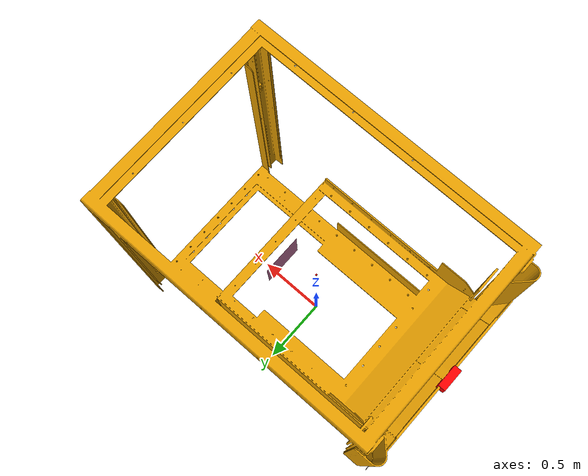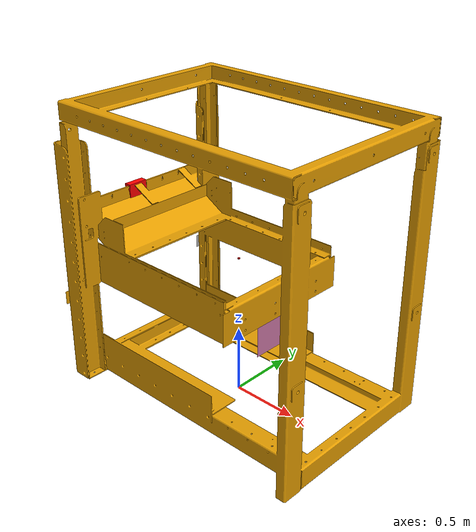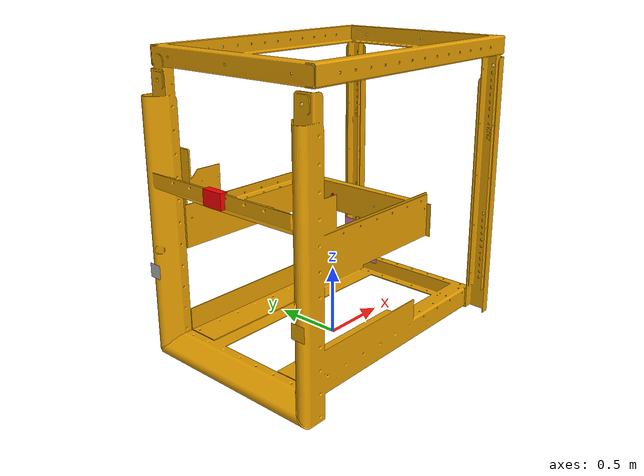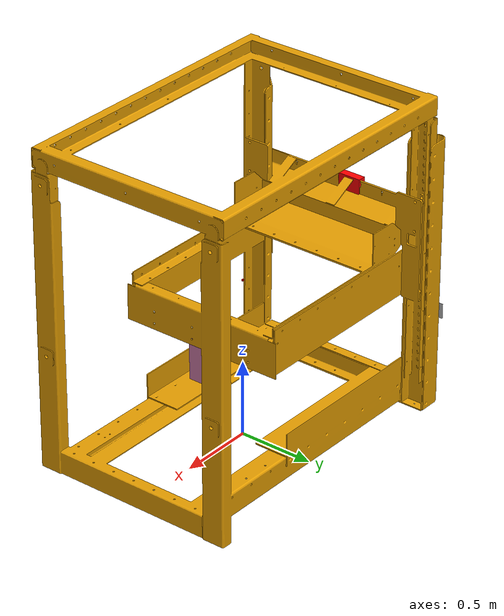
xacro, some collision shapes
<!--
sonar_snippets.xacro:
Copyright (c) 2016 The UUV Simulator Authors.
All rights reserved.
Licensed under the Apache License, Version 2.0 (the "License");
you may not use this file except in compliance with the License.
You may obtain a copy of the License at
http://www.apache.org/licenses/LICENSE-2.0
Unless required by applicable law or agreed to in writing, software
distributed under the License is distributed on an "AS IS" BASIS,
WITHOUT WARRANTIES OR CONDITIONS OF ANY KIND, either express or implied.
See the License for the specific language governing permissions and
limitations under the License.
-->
<?xml version="1.0"?>
<robot name="tms" xmlns:xacro="http://www.ros.org/wiki/xacro">

  <!-- Necessary for sonar to work -->
  <xacro:arg name="namespace" default="tms"/>
  <xacro:arg name="visualize" default="false"/>
  <xacro:include filename="$(find deep_ocean)/urdf_xacro_files/sensors_and_actuators/sonar_snippets.xacro" />
  <xacro:include filename="$(find deep_ocean)/urdf_xacro_files/sensors_and_actuators/sensor_snippets.xacro" />
  <!-- Necessary for thruster_macro to work -->
  <xacro:include filename="$(find deep_ocean)/urdf_xacro_files/sensors_and_actuators/actuators.xacro" />
  <xacro:include filename="$(find uuv_descriptions)/urdf/common.urdf.xacro" />
  <xacro:include filename="$(find deep_ocean)/urdf_xacro_files/sensors_and_actuators/thruster_snippets.xacro" />
  <!-- Necessary for state publishing -->
  <xacro:include filename="$(find uuv_gazebo_ros_plugins)/urdf/misc.xacro" />
  <!-- Necessary for ArUco markers and calibration bord -->
  <xacro:include filename="$(find deep_ocean)/urdf_xacro_files/sensors_and_actuators/aruco_macro.xacro" />

  <!-- Fluid Density of Water (kg/m³) -->
  <xacro:property name="fluid_density" value="1028"/>

  <!-- Scaling Factor for the TMS. Greater size means it's easier to dock -->
  <xacro:property name="scale_factor" value="1.3"/> <!-- Change this to scale up/down -->

  <!-- Original Dimensions of the TMS -->
  <xacro:property name="size_x_orig" value="1.64"/>
  <xacro:property name="size_y_orig" value="1.07"/>
  <xacro:property name="size_z_orig" value="1.62"/>

  <!-- Scaled Dimensions -->
  <xacro:property name="size_x" value="${size_x_orig * scale_factor}"/>
  <xacro:property name="size_y" value="${size_y_orig * scale_factor}"/>
  <xacro:property name="size_z" value="${size_z_orig * scale_factor}"/>

  <!-- Mass (Scaled) -->
  <xacro:property name="mass" value="${550}"/>

  <!-- Volume (to ensure neutral buoyancy) -->
  <xacro:property name="volume" value="${mass / fluid_density}"/>

  <!-- Center of Buoyancy (adjusted based on height) -->
  <xacro:property name="cob_z" value="${0.6 * size_z}"/>

  <!-- Inertia Calculation -->
  <xacro:property name="ixx" value="${(1/12) * mass * (size_y * size_y + size_z * size_z)}"/>
  <xacro:property name="iyy" value="${(1/12) * mass * (size_x * size_x + size_z * size_z)}"/>
  <xacro:property name="izz" value="${(1/12) * mass * (size_x * size_x + size_y * size_y)}"/>

  <link name="$(arg namespace)/base_link">
    <inertial>
      <mass value="${mass}"/>
      <origin xyz="0 0 0" rpy="0 0 3.14159"/>
      <inertia ixx="${ixx}" ixy="0.0" ixz="0.0" iyy="${iyy}" iyz="0.0" izz="${izz}"/>
    </inertial>

    <!-- Visual Representation -->
    <visual>
      <origin xyz="0 0 0" rpy="0 0 3.14159"/>
      <geometry>
        <mesh filename="package://deep_ocean/meshes/tms_visual.dae" scale="${scale_factor} ${scale_factor} ${scale_factor}"/>
      </geometry>
    </visual>

    <!-- Collision Geometry -->
    <collision>
      <origin xyz="0 0 0" rpy="0 0 3.14159"/>
      <geometry>
        <mesh filename="package://deep_ocean/meshes/tms_collision.stl" scale="${scale_factor} ${scale_factor} ${scale_factor}"/>
      </geometry>
    </collision>
  </link>

  <gazebo>
    <plugin name="uuv_plugin" filename="libuuv_underwater_object_ros_plugin.so">
      <fluid_density>${fluid_density}</fluid_density>
      <flow_velocity_topic>hydrodynamics/current_velocity</flow_velocity_topic>
      <debug>0</debug>
      <link name="$(arg namespace)/base_link">
        <neutrally_buoyant>1</neutrally_buoyant>  <!-- Ensures mass and volume decide float/sink -->
        <volume>${volume}</volume>
        <box>
          <width>${size_x}</width>
          <length>${size_y}</length>
          <height>${size_z}</height>
        </box>
        <center_of_buoyancy>0 0 ${cob_z}</center_of_buoyancy>

        <!-- Hydrodynamic Model using Fossen type -->
        <hydrodynamic_model>
          <type>fossen</type>

          <!-- Rough Added Mass Estimation -->
          <added_mass>
              ${0.1 * mass}  0  0  0  0  0
              0  ${0.1 * mass}  0  0  0  0
              0  0  ${0.1 * mass}  0  0  0
              0  0  0  ${0.05 * mass}  0  0
              0  0  0  0  ${0.05 * mass}  0
              0  0  0  0  0  ${0.05 * mass}
          </added_mass>

          <!-- Rough Linear Damping Estimation -->
          <linear_damping>
              ${-150 * size_x} ${-150 * size_y} ${-150 * size_z}
              ${-50 * size_z} ${-50 * size_y} ${-50 * size_x}
          </linear_damping>

          <quadratic_damping>
              ${-200 * size_x} ${-200 * size_y} ${-200 * size_z}
              ${-75 * size_z} ${-75 * size_y} ${-75 * size_x}
          </quadratic_damping>

        </hydrodynamic_model>

      </link>
    </plugin>
  </gazebo>

  <xacro:default_joint_state_publisher namespace="$(arg namespace)" update_rate="50"/>

  <!-- Initilizing thruster macro, found in actuators.xacro -->
  <xacro:thruster_macro namespace="$(arg namespace)" thruster_id="0" mesh_scale="${scale_factor}">
    <origin xyz="${0.6650895*scale_factor} ${0.367385*scale_factor} ${0.828822*scale_factor}" rpy="0 0 ${3*pi/4}"/>
  </xacro:thruster_macro>
  <xacro:thruster_macro namespace="$(arg namespace)" thruster_id="1" mesh_scale="${scale_factor}">
    <origin xyz="${0.665895*scale_factor} ${-0.367385*scale_factor} ${0.828822*scale_factor}" rpy="0 0 ${-3*pi/4}"/>
  </xacro:thruster_macro>

  <!-- Macro from sonar_snippets file -->
  <xacro:sonar_3d parent_link="$(arg namespace)/base_link" namespace="$(arg namespace)" scale_factor="${scale_factor}">
      <origin xyz="${-0.8*scale_factor} 0 ${0.98*scale_factor}" rpy="0 0 ${pi}"/>
  </xacro:sonar_3d>

  <!-- imu sensor -->
  <xacro:imu_sensor parent_link="$(arg namespace)/base_link" namespace="$(arg namespace)">
      <origin xyz="0 0 ${0.81*scale_factor}" rpy="0 0 0"/>
  </xacro:imu_sensor>

    <!-- Spawning in ArUco 5x5 marker -->
  <xacro:aruco_marker_5x5 namespace="$(arg namespace)" parent_link="$(arg namespace)/base_link" id="0" scale="0.30">
    <origin xyz="${0.24*scale_factor} 0 ${0.48*scale_factor}" rpy="${pi/2} 0 ${-pi/2}"/>
  </xacro:aruco_marker_5x5>

    <!-- Spawning in ArUco 4x4 marker -->
  <xacro:aruco_marker_4x4 namespace="$(arg namespace)" parent_link="$(arg namespace)/base_link" id="0" scale="1">
    <origin xyz="${-0.8*scale_factor} ${0.5*scale_factor} ${0.485*scale_factor}" rpy="${pi/2} 0 ${-pi/2}"/>
  </xacro:aruco_marker_4x4>

  <xacro:aruco_marker_4x4 namespace="$(arg namespace)" parent_link="$(arg namespace)/base_link" id="3" scale="1">
    <origin xyz="${-0.8*scale_factor} ${-0.5*scale_factor} ${0.485*scale_factor}" rpy="${pi/2} 0 ${-pi/2}"/>
  </xacro:aruco_marker_4x4>

</robot>

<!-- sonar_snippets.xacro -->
<robot xmlns:xacro="http://www.ros.org/wiki/xacro">

  <!-- Macro for a minimal collision block (for when you do not want collision block but gazebo needs one) -->
  <xacro:macro name="no_collision">
    <collision>
      <geometry>
        <cylinder length="${0.000001}" radius="${0.000001}" />
      </geometry>
      <origin xyz="0 0 0" rpy="0 ${0.5*pi} 0"/>
    </collision>
  </xacro:macro>

  <!-- Inspired by m450-130: http://www.blueview.com/products/2d-imaging-sonar/m900-series/ -->
  <xacro:macro name="forward_multibeam_sonar_m450_130" params="namespace parent_link visualize:=false *origin">
    <xacro:multibeam_sonar
      namespace="${namespace}"
      suffix=""
      parent_link="${parent_link}"
      topic="sonar"
      mass="0.0001"
      update_rate="25"
      samples="768"
      fov="2.27"
      range_min="1.0"
      range_max="100.0"
      range_stddev="0.027"
      mesh=""
      visualize="${visualize}">
      <inertia ixx="0.00001" ixy="0.0" ixz="0.0" iyy="0.00001" iyz="0.0" izz="0.00001" />
      <xacro:insert_block name="origin" />
      <visual>
        <geometry>
          <mesh filename="file://$(find uuv_sensor_ros_plugins)/meshes/m450-130.dae" scale="0.5 0.5 0.5"/>
        </geometry>
      </visual>
    </xacro:multibeam_sonar>
  </xacro:macro>

  <xacro:macro name="multibeam_sonar"
    params="namespace suffix parent_link topic mass update_rate
      samples fov range_min range_max range_stddev mesh visualize
      *inertia *origin *visual">
    <!-- Sensor link -->
    <link name="${namespace}/sonar${suffix}_link">
      <inertial>
        <xacro:insert_block name="inertia" />
        <mass value="${mass}" />
        <origin xyz="1 0 0" rpy="0 0 0" />
      </inertial>

      <xacro:insert_block name="visual" />
      <xacro:no_collision/>
    </link>

  <joint name="${namespace}_sonar${suffix}_joint" type="revolute">
    <xacro:insert_block name="origin" />
    <parent link="${parent_link}" />
    <child link="${namespace}/sonar${suffix}_link" />
    <limit upper="0" lower="0" effort="0" velocity="0" />
    <axis xyz="1 0 0"/>
  </joint>

  <gazebo reference="${namespace}/sonar${suffix}_link">
    <sensor type="gpu_ray" name="sonar${suffix}">
      <pose>0 0 0 0 0 0</pose>
      <visualize>${visualize}</visualize>
      <update_rate>${update_rate}</update_rate>
      <ray>
        <scan>
          <horizontal>
            <samples>${samples}</samples>
            <resolution>1</resolution>
            <min_angle>-${0.5*fov}</min_angle>
            <max_angle>${0.5*fov}</max_angle>
          </horizontal>
        </scan>
        <range>
          <min>${range_min}</min>
          <max>${range_max}</max>
          <resolution>0.01</resolution>
        </range>
        <noise>
          <type>gaussian</type>
          <mean>0.0</mean>
          <stddev>${range_stddev}</stddev>
        </noise>
      </ray>
      <plugin name="sonar${suffix}_controller" filename="libgazebo_ros_gpu_laser.so">
        <topicName>${topic}</topicName>
        <frameName>sonar${suffix}_link</frameName>
      </plugin>
      <!-- TODO: Separate switchable sonar version in another macro -->
    </sensor>
  </gazebo>
  </xacro:macro>

  <!-- Macro a 3d depth sonar -->
<xacro:macro name="sonar_3d" params="parent_link namespace scale_factor:=1.0 *origin">

    <link name="${namespace}/sonar_3d_link">
      <visual>
        <geometry>
          <box size="${scale_factor*0.04} ${scale_factor*0.12} ${scale_factor*0.08}"/>
        </geometry>
        <material name="red">
          <color rgba="1 0 0 1"/>
        </material>
      </visual>
      <inertial>
        <mass value="0.0"/>
        <origin xyz="0 0 0"/>
        <inertia ixx="${scale_factor*0.1}" ixy="0.0" ixz="0.0" iyy="${scale_factor*0.1}" iyz="0.0" izz="${scale_factor*0.1}"/>
      </inertial>
      <collision>
        <geometry>
          <box size="${scale_factor*0.04} ${scale_factor*0.12} ${scale_factor*0.08}"/>
        </geometry>
      </collision>
    </link>

    <joint name="${namespace}/sonar_3d_joint" type="fixed">
      <parent link="${parent_link}"/>
      <child link="${namespace}/sonar_3d_link"/>
      <xacro:insert_block name="origin" />
    </joint>

    <link name="${namespace}/sonar_3d_optical_link"/>
    <joint name="${namespace}/sonar_3d_optical_joint" type="fixed">
      <parent link="${namespace}/sonar_3d_link"/>
      <child link="${namespace}/sonar_3d_optical_link"/>
      <origin xyz="0 0 0" rpy="-1.57 0 -1.57"/>
    </joint>

    <gazebo reference="${namespace}/sonar_3d_link">
      <material>Gazebo/Red</material>
      <sensor name="sonar_3d_sensor" type="depth">
        <visualize>true</visualize>
        <updateRate>5</updateRate>
        <camera>
          <horizontal_fov>1.57</horizontal_fov>
          <vertical_fov>0.698</vertical_fov>
          <image>
            <width>160</width>
            <height>100</height>
          </image>
          <clip>
            <near>0.02</near>
            <far>15.0</far>     <!-- Change the length of field of view-->
          </clip>
        </camera>
        <plugin name="sonar_3d_plugin" filename="libgazebo_ros_openni_kinect.so">
          <cameraName>${namespace}/sonar_3d</cameraName>
          <frameName>${namespace}/sonar_3d_optical_link</frameName>
          <alwaysOn>true</alwaysOn>
          <pointCloudTopicName>points</pointCloudTopicName>
          <imageTopicName>rgb/image_raw</imageTopicName>
          <depthImageTopicName>depth/image_raw</depthImageTopicName>
          <cameraInfoTopicName>rgb/camera_info</cameraInfoTopicName>
          <depthImageCameraInfoTopicName>depth/camera_info</depthImageCameraInfoTopicName>
        </plugin>
      </sensor>
    </gazebo>
</xacro:macro>

</robot>

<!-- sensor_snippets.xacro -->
<robot xmlns:xacro="http://www.ros.org/wiki/xacro">

    <!-- IMU sensor macro -->
    <xacro:macro name="imu_sensor" params="parent_link namespace *origin">
    <link name="${namespace}/imu_link">
        <visual>
            <geometry>
                <box size="0.01 0.01 0.01" />
            </geometry>
            <material name="red">
                <color rgba="1 0 0 1" />
            </material>
        </visual>
        <inertial>
            <mass value="0.0" />
            <origin xyz="0 0 0" />
            <inertia ixx="0.1" ixy="0.0" ixz="0.0" iyy="0.1" iyz="0.0" izz="0.1" />
        </inertial>
        <collision>
            <geometry>
                <box size="0.01 0.01 0.01" />
            </geometry>
        </collision>
    </link>

    <joint name="${namespace}/imu_joint" type="fixed">
        <parent link="${parent_link}" />
        <child link="${namespace}/imu_link" />
        <xacro:insert_block name="origin" />
    </joint>

    <gazebo reference="${namespace}/imu_link">
        <gravity>true</gravity>
        <sensor name="imu_sensor" type="imu">
        <always_on>true</always_on>
        <update_rate>10</update_rate>
        <visualize>true</visualize>
        <topic>__default_topic__</topic>
        <plugin filename="libgazebo_ros_imu_sensor.so" name="imu_plugin">
            <topicName>imu</topicName>
            <bodyName>${namespace}/imu_link</bodyName>
            <updateRateHZ>10.0</updateRateHZ>
            <gaussianNoise>0.0</gaussianNoise>
            <xyzOffset>0 0 0</xyzOffset>
            <rpyOffset>0 0 0</rpyOffset>
            <frameName>${namespace}/imu_link</frameName>
            <initialOrientationAsReference>false</initialOrientationAsReference>
        </plugin>
        <pose>0 0 0 0 0 0</pose>
        </sensor>
    </gazebo>
    </xacro:macro>

    <!-- camera sensor macro -->
    <xacro:macro name="camera_sensor" params="parent_link namespace *origin">
    <link name="${namespace}/camera_link">
        <visual>
            <geometry>
                <mesh filename="file://$(find deep_ocean)/meshes/exploreHD_camera.stl" />
            </geometry>
        </visual>
        <inertial>
            <mass value="0.2" />
            <origin xyz="0 0 0" />
        <inertia ixx="0.1" ixy="0.0" ixz="0.0" iyy="0.1" iyz="0.0" izz="0.1" />
        </inertial>
        <collision>
            <geometry>
                <box size="0.1 0.1 0.1" />
            </geometry>
        </collision>
    </link>

    <joint name="${namespace}/camera_joint" type="fixed">
        <parent link="${parent_link}" />
        <child link="${namespace}/camera_link" />
        <xacro:insert_block name="origin" />
    </joint>

    <link name="${namespace}/camera_link_optical"/>

    <joint name="${namespace}/camera_optical_joint" type="fixed">
        <parent link="${namespace}/camera_link" />
        <child link="${namespace}/camera_link_optical" />
        <origin xyz="0 0 0" rpy="-1.57 0 -1.57"/>
    </joint>

    <gazebo reference="${namespace}/camera_link">
        <material>Gazebo/Red</material>
        <sensor type="camera" name="camera_sensor">
        <pose>0 0 0 0 0 0</pose>
        <update_rate>30</update_rate>
        <camera>
            <horizontal_fov>1.047</horizontal_fov>
            <image>
            <width>1920</width>
            <height>1080</height>
            <format>R8G8B8</format>
            </image>
            <clip>
            <near>0.1</near>
            <far>10</far>
            </clip>
        </camera>
        <plugin name="camera_controller" filename="libgazebo_ros_camera.so">
            <frameName>${namespace}/camera_link_optical</frameName>
            <alwaysOn>true</alwaysOn>
            <updateRate>0.0</updateRate>
            <cameraName>camera</cameraName>
            <imageTopicName>image_raw</imageTopicName>
            <cameraInfoTopicName>camera_info</cameraInfoTopicName>
        </plugin>
        </sensor>
    </gazebo>
    </xacro:macro>

</robot>

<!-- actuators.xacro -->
<robot xmlns:xacro="http://www.ros.org/wiki/xacro">

  <xacro:property name="prop_mesh_file" value="file://$(find uuv_descriptions)/meshes/prop.dae" />
  <!--xacro:property name="prop_mesh_file" value="file://$(find rexrov2_description)/meshes/Propeller.dae" /-->

  <!-- Thruster joint and link snippet -->
  <xacro:macro name="thruster_macro"
    params="namespace thruster_id mesh_scale:=0.5 *origin">
    <xacro:thruster_module_first_order_basic_fcn_macro
      namespace="${namespace}"
      thruster_id="${thruster_id}"
      mesh_filename="${prop_mesh_file}"
      mesh_scale="${mesh_scale}"
      dyn_time_constant="0.05"
      rotor_constant="0.026546960744430276">
      <xacro:insert_block name="origin"/>
    </xacro:thruster_module_first_order_basic_fcn_macro>
  </xacro:macro>

</robot>

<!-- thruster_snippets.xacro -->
<robot xmlns:xacro="http://www.ros.org/wiki/xacro">

  <!-- ROTOR DYNAMICS MACROS -->

  <!-- First order dynamics -->

  <xacro:macro name="rotor_dyn_first_order_macro" params="time_constant">
    <dynamics>
      <type>FirstOrder</type>
      <timeConstant>${time_constant}</timeConstant>
    </dynamics>
  </xacro:macro>

  <!--
    MACROS FOR CONVERSION FUNCTIONS BETWEEN ROTOR'S ANG. VELOCITY AND
    THRUSTER FORCE
  -->

  <!--
    1) Basic curve
      Input: x
      Output: thrust
      Function: thrust = rotorConstant * x * abs(x)
  -->
  <xacro:macro name="thruster_cf_basic_macro"
    params="rotor_constant">
    <conversion>
      <type>Basic</type>
      <rotorConstant>${rotor_constant}</rotorConstant>
    </conversion>
  </xacro:macro>

  <xacro:macro name="thruster_cf_dead_zone_macro"
    params="rotor_constant_l
            rotor_constant_r
            delta_l
            delta_r">
    <conversion>
      <type>Bessa</type>
      <rotorConstantL>${rotor_constant_l}</rotorConstantL>
      <rotorConstantR>${rotor_constant_r}</rotorConstantR>
      <deltaL>${delta_l}</deltaL>
      <deltaR>${delta_r}</deltaR>
    </conversion>
  </xacro:macro>

  <xacro:macro name="thruster_cf_linear_interp_macro"
    params="input_values
            output_values">
    <conversion>
      <type>LinearInterp</type>
      <inputValues>${input_values}</inputValues>
      <outputValues>${output_values}</outputValues>
    </conversion>
  </xacro:macro>

  <!-- THRUSTER MODULE MACROS  -->

  <xacro:macro name="generic_thruster_macro"
    params="namespace
            thruster_id
            *origin
            mesh_filename
            mesh_scale
            *dynamics
            *conversion">
    <joint name="${namespace}/thruster_${thruster_id}_joint" type="continuous">
      <xacro:insert_block name="origin"/>
      <axis xyz="1 0 0"/>
      <parent link="${namespace}/base_link"/>
      <child link="${namespace}/thruster_${thruster_id}"/>
    </joint>

    <link name="${namespace}/thruster_${thruster_id}">
      <xacro:box_inertial x="0" y="0" z="0" mass="0.000000001">
        <origin xyz="0 0 0" rpy="0 0 0"/>
      </xacro:box_inertial>
      <visual>
        <origin rpy="0 0 0" xyz="0 0 0"/>
        <geometry>
          <mesh filename="${mesh_filename}" scale="${mesh_scale} ${mesh_scale} ${mesh_scale}"/>
        </geometry>
      </visual>
      <collision>
        <!-- todo: gazebo needs a collision volume or it will ignore the pose of
           the joint that leads to this link (and assume it to be the identity) -->
        <geometry>
          <cylinder length="0.000001" radius="0.000001"/>
        </geometry>
        <origin xyz="0 0 0" rpy="0 0 0"/>
      </collision>
    </link>

    <gazebo>
      <plugin name="${namespace}_${thruster_id}_thruster_model" filename="libuuv_thruster_ros_plugin.so">
        <linkName>${namespace}/thruster_${thruster_id}</linkName>
        <jointName>${namespace}/thruster_${thruster_id}_joint</jointName>
        <thrusterID>${thruster_id}</thrusterID>
        <xacro:insert_block name="dynamics"/>
        <xacro:insert_block name="conversion"/>
      </plugin>
    </gazebo>

    <gazebo reference="${namespace}/thruster_${thruster_id}">
      <selfCollide>false</selfCollide>
    </gazebo>
  </xacro:macro>

  <!--
    Thruster model with first order dynamic model for the rotor dynamics
    and a proportional non-linear steady-state conversion from the rotor's
    angular velocity to output thrust force
  -->

  <xacro:macro name="thruster_module_first_order_basic_fcn_macro"
      params="namespace
              thruster_id
              *origin
              mesh_filename
              mesh_scale
              dyn_time_constant
              rotor_constant">
    <xacro:generic_thruster_macro
      namespace="${namespace}"
      thruster_id="${thruster_id}"
      mesh_filename="${mesh_filename}"
      mesh_scale="${mesh_scale}">
      <xacro:insert_block name="origin"/>
      <xacro:rotor_dyn_first_order_macro time_constant="${dyn_time_constant}"/>
      <xacro:thruster_cf_basic_macro rotor_constant="${rotor_constant}"/>
    </xacro:generic_thruster_macro>
  </xacro:macro>

</robot>

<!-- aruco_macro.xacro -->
<robot xmlns:xacro="http://www.ros.org/wiki/xacro">

  <!-- ArUco Marker 5x5 Macro -->
  <xacro:macro name="aruco_marker_5x5" params="namespace parent_link id scale:=0.6 *origin">
    <link name="${namespace}/aruco_marker_5x5_${id}">
      <inertial>
        <mass value="0.01"/>
        <origin xyz="0 0 0"/>
        <inertia ixx="0.001" ixy="0.0" ixz="0.0"
                 iyy="0.001" iyz="0.0"
                 izz="0.001"/>
      </inertial>

      <visual>
        <geometry>
          <mesh filename="file://$(find deep_ocean)/aruco/textures/marker_5x5_${id}.dae"
                scale="${scale} ${scale} ${scale}"/>
        </geometry>
      </visual>

      <xacro:no_collision/>
    </link>

    <joint name="${namespace}_aruco_5x5_${id}_joint" type="fixed">
      <xacro:insert_block name="origin"/>
      <parent link="${parent_link}"/>
      <child link="${namespace}/aruco_marker_5x5_${id}"/>
    </joint>
  </xacro:macro>

  <!-- ArUco Marker 4x4 Macro -->
  <xacro:macro name="aruco_marker_4x4" params="namespace parent_link id scale:=0.6 *origin">
    <link name="${namespace}/aruco_marker_4x4_${id}">
      <inertial>
        <mass value="0.01"/>
        <origin xyz="0 0 0"/>
        <inertia ixx="0.001" ixy="0.0" ixz="0.0"
                 iyy="0.001" iyz="0.0"
                 izz="0.001"/>
      </inertial>

      <visual>
        <geometry>
          <mesh filename="file://$(find deep_ocean)/aruco/textures/marker_4x4_${id}.dae"
                scale="${scale} ${scale} ${scale}"/>
        </geometry>
      </visual>

      <xacro:no_collision/>
    </link>

    <joint name="${namespace}_aruco_4x4_${id}_joint" type="fixed">
      <xacro:insert_block name="origin"/>
      <parent link="${parent_link}"/>
      <child link="${namespace}/aruco_marker_4x4_${id}"/>
    </joint>
  </xacro:macro>

  <!-- Calibration Board Macro -->
  <xacro:macro name="calibration_board" params="namespace parent_link id scale:=0.6 *origin">
    <link name="${namespace}/calibration_board_${id}">
      <inertial>
        <mass value="0.1"/>
        <origin xyz="0 0 0"/>
        <inertia ixx="0.01" ixy="0.0" ixz="0.0"
                 iyy="0.01" iyz="0.0"
                 izz="0.01"/>
      </inertial>

      <visual>
        <geometry>
          <mesh filename="file://$(find deep_ocean)/aruco/textures/checkerboard_7x10_bordered.dae"
                scale="${scale} ${scale} ${scale}"/>
        </geometry>
      </visual>

      <xacro:no_collision/>
    </link>

    <joint name="${namespace}_calibration_${id}_joint" type="fixed">
      <xacro:insert_block name="origin"/>
      <parent link="${parent_link}"/>
      <child link="${namespace}/calibration_board_${id}"/>
    </joint>
  </xacro:macro>

</robot>
